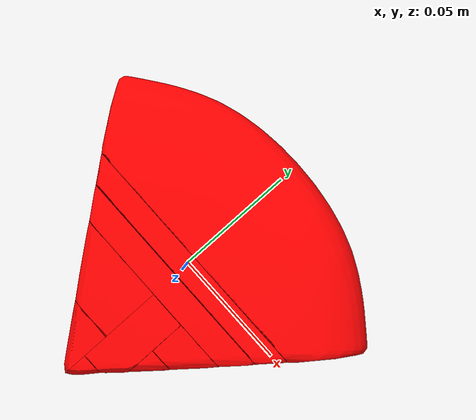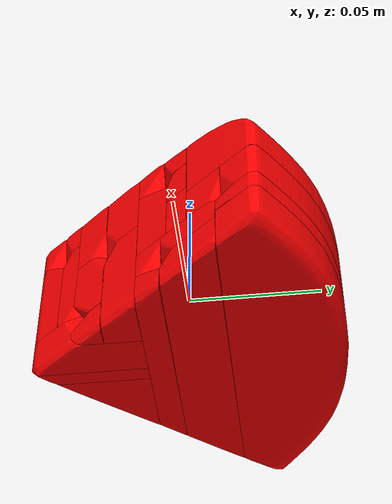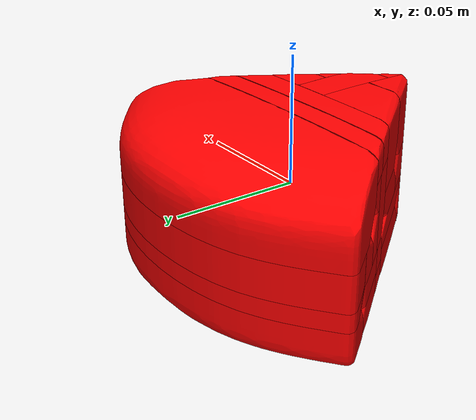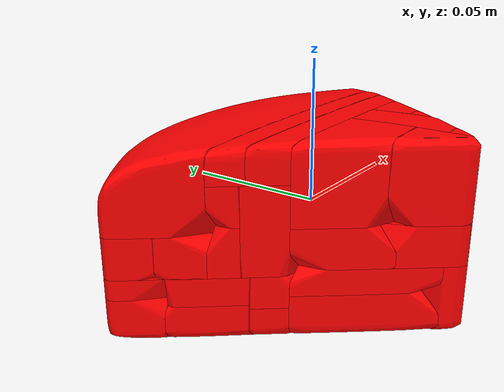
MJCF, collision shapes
<?xml version="1.0" ?>
<mujoco model="cheese_2">
	<compiler meshdir="cheese_2/meshes" texturedir="cheese_2/textures" angle="radian" autolimits="true" balanceinertia="true" boundmass="0.000001" boundinertia="0.000001"/>
	<default>
		<default class="visual">
			<geom contype="0" conaffinity="0"/>
		</default>
		<default class="collision">
			<geom rgba="1.0 0.0 0.0 0.0"/>
		</default>
	</default>
	<asset>
		<mesh name="Cheese2" file="obj/Cheese2.obj" scale="1.0 1.0 1.0"/>
		<mesh name="Cheese2_001" file="stl/Cheese2_001.stl" scale="1.0 1.0 1.0"/>
		<mesh name="Cheese2_002" file="stl/Cheese2_002.stl" scale="1.0 1.0 1.0"/>
		<mesh name="Cheese2_003" file="stl/Cheese2_003.stl" scale="1.0 1.0 1.0"/>
		<mesh name="Cheese2_004" file="stl/Cheese2_004.stl" scale="1.0 1.0 1.0"/>
		<mesh name="Cheese2_005" file="stl/Cheese2_005.stl" scale="1.0 1.0 1.0"/>
		<mesh name="Cheese2_006" file="stl/Cheese2_006.stl" scale="1.0 1.0 1.0"/>
		<mesh name="Cheese2_007" file="stl/Cheese2_007.stl" scale="1.0 1.0 1.0"/>
		<mesh name="Cheese2_008" file="stl/Cheese2_008.stl" scale="1.0 1.0 1.0"/>
		<mesh name="Cheese2_009" file="stl/Cheese2_009.stl" scale="1.0 1.0 1.0"/>
		<mesh name="Cheese2_010" file="stl/Cheese2_010.stl" scale="1.0 1.0 1.0"/>
		<mesh name="Cheese2_011" file="stl/Cheese2_011.stl" scale="1.0 1.0 1.0"/>
		<mesh name="Cheese2_012" file="stl/Cheese2_012.stl" scale="1.0 1.0 1.0"/>
		<mesh name="Cheese2_013" file="stl/Cheese2_013.stl" scale="1.0 1.0 1.0"/>
		<mesh name="Cheese2_014" file="stl/Cheese2_014.stl" scale="1.0 1.0 1.0"/>
		<mesh name="Cheese2_015" file="stl/Cheese2_015.stl" scale="1.0 1.0 1.0"/>
		<mesh name="Cheese2_016" file="stl/Cheese2_016.stl" scale="1.0 1.0 1.0"/>
		<mesh name="Cheese2_017" file="stl/Cheese2_017.stl" scale="1.0 1.0 1.0"/>
		<mesh name="Cheese2_018" file="stl/Cheese2_018.stl" scale="1.0 1.0 1.0"/>
		<mesh name="Cheese2_019" file="stl/Cheese2_019.stl" scale="1.0 1.0 1.0"/>
		<mesh name="Cheese2_020" file="stl/Cheese2_020.stl" scale="1.0 1.0 1.0"/>
		<mesh name="Cheese2_021" file="stl/Cheese2_021.stl" scale="1.0 1.0 1.0"/>
		<mesh name="Cheese2_022" file="stl/Cheese2_022.stl" scale="1.0 1.0 1.0"/>
		<mesh name="Cheese2_023" file="stl/Cheese2_023.stl" scale="1.0 1.0 1.0"/>
		<mesh name="Cheese2_024" file="stl/Cheese2_024.stl" scale="1.0 1.0 1.0"/>
		<mesh name="Cheese2_025" file="stl/Cheese2_025.stl" scale="1.0 1.0 1.0"/>
		<mesh name="Cheese2_026" file="stl/Cheese2_026.stl" scale="1.0 1.0 1.0"/>
		<mesh name="Cheese2_027" file="stl/Cheese2_027.stl" scale="1.0 1.0 1.0"/>
		<mesh name="Cheese2_028" file="stl/Cheese2_028.stl" scale="1.0 1.0 1.0"/>
		<mesh name="Cheese2_029" file="stl/Cheese2_029.stl" scale="1.0 1.0 1.0"/>
		<mesh name="Cheese2_030" file="stl/Cheese2_030.stl" scale="1.0 1.0 1.0"/>
		<mesh name="Cheese2_031" file="stl/Cheese2_031.stl" scale="1.0 1.0 1.0"/>
		<material name="M_Cheese2" texture="T_Cheese2"/>
		<texture name="T_Cheese2" type="2d" file="T_Cheese2.png"/>
	</asset>
	<worldbody>
		<body name="cheese_2" pos="0.0 0.0 0.0" quat="1.0 0.0 0.0 0.0">
			<inertial mass="0.6631571054458618" pos="-1.0164034392801113e-05 0.011534037068486214 -0.001836750889196992" quat="0.9981549382209778 -0.05943622440099716 0.0012923438334837556 0.012344392016530037" diaginertia="0.0007071096915751696 0.0007440028712153435 0.0010691877687349916"/>
			<geom name="Cheese2" type="mesh" pos="0.0 0.0 0.0" quat="1.0 0.0 0.0 0.0" mesh="Cheese2" material="M_Cheese2" class="visual"/>
			<geom name="Cheese2_001" type="mesh" pos="0.0 0.0 0.0" quat="1.0 0.0 0.0 0.0" mesh="Cheese2_001" class="collision"/>
			<geom name="Cheese2_002" type="mesh" pos="0.0 0.0 0.0" quat="1.0 0.0 0.0 0.0" mesh="Cheese2_002" class="collision"/>
			<geom name="Cheese2_003" type="mesh" pos="0.0 0.0 0.0" quat="1.0 0.0 0.0 0.0" mesh="Cheese2_003" class="collision"/>
			<geom name="Cheese2_004" type="mesh" pos="0.0 0.0 0.0" quat="1.0 0.0 0.0 0.0" mesh="Cheese2_004" class="collision"/>
			<geom name="Cheese2_005" type="mesh" pos="0.0 0.0 0.0" quat="1.0 0.0 0.0 0.0" mesh="Cheese2_005" class="collision"/>
			<geom name="Cheese2_006" type="mesh" pos="0.0 0.0 0.0" quat="1.0 0.0 0.0 0.0" mesh="Cheese2_006" class="collision"/>
			<geom name="Cheese2_007" type="mesh" pos="0.0 0.0 0.0" quat="1.0 0.0 0.0 0.0" mesh="Cheese2_007" class="collision"/>
			<geom name="Cheese2_008" type="mesh" pos="0.0 0.0 0.0" quat="1.0 0.0 0.0 0.0" mesh="Cheese2_008" class="collision"/>
			<geom name="Cheese2_009" type="mesh" pos="0.0 0.0 0.0" quat="1.0 0.0 0.0 0.0" mesh="Cheese2_009" class="collision"/>
			<geom name="Cheese2_010" type="mesh" pos="0.0 0.0 0.0" quat="1.0 0.0 0.0 0.0" mesh="Cheese2_010" class="collision"/>
			<geom name="Cheese2_011" type="mesh" pos="0.0 0.0 0.0" quat="1.0 0.0 0.0 0.0" mesh="Cheese2_011" class="collision"/>
			<geom name="Cheese2_012" type="mesh" pos="0.0 0.0 0.0" quat="1.0 0.0 0.0 0.0" mesh="Cheese2_012" class="collision"/>
			<geom name="Cheese2_013" type="mesh" pos="0.0 0.0 0.0" quat="1.0 0.0 0.0 0.0" mesh="Cheese2_013" class="collision"/>
			<geom name="Cheese2_014" type="mesh" pos="0.0 0.0 0.0" quat="1.0 0.0 0.0 0.0" mesh="Cheese2_014" class="collision"/>
			<geom name="Cheese2_015" type="mesh" pos="0.0 0.0 0.0" quat="1.0 0.0 0.0 0.0" mesh="Cheese2_015" class="collision"/>
			<geom name="Cheese2_016" type="mesh" pos="0.0 0.0 0.0" quat="1.0 0.0 0.0 0.0" mesh="Cheese2_016" class="collision"/>
			<geom name="Cheese2_017" type="mesh" pos="0.0 0.0 0.0" quat="1.0 0.0 0.0 0.0" mesh="Cheese2_017" class="collision"/>
			<geom name="Cheese2_018" type="mesh" pos="0.0 0.0 0.0" quat="1.0 0.0 0.0 0.0" mesh="Cheese2_018" class="collision"/>
			<geom name="Cheese2_019" type="mesh" pos="0.0 0.0 0.0" quat="1.0 0.0 0.0 0.0" mesh="Cheese2_019" class="collision"/>
			<geom name="Cheese2_020" type="mesh" pos="0.0 0.0 0.0" quat="1.0 0.0 0.0 0.0" mesh="Cheese2_020" class="collision"/>
			<geom name="Cheese2_021" type="mesh" pos="0.0 0.0 0.0" quat="1.0 0.0 0.0 0.0" mesh="Cheese2_021" class="collision"/>
			<geom name="Cheese2_022" type="mesh" pos="0.0 0.0 0.0" quat="1.0 0.0 0.0 0.0" mesh="Cheese2_022" class="collision"/>
			<geom name="Cheese2_023" type="mesh" pos="0.0 0.0 0.0" quat="1.0 0.0 0.0 0.0" mesh="Cheese2_023" class="collision"/>
			<geom name="Cheese2_024" type="mesh" pos="0.0 0.0 0.0" quat="1.0 0.0 0.0 0.0" mesh="Cheese2_024" class="collision"/>
			<geom name="Cheese2_025" type="mesh" pos="0.0 0.0 0.0" quat="1.0 0.0 0.0 0.0" mesh="Cheese2_025" class="collision"/>
			<geom name="Cheese2_026" type="mesh" pos="0.0 0.0 0.0" quat="1.0 0.0 0.0 0.0" mesh="Cheese2_026" class="collision"/>
			<geom name="Cheese2_027" type="mesh" pos="0.0 0.0 0.0" quat="1.0 0.0 0.0 0.0" mesh="Cheese2_027" class="collision"/>
			<geom name="Cheese2_028" type="mesh" pos="0.0 0.0 0.0" quat="1.0 0.0 0.0 0.0" mesh="Cheese2_028" class="collision"/>
			<geom name="Cheese2_029" type="mesh" pos="0.0 0.0 0.0" quat="1.0 0.0 0.0 0.0" mesh="Cheese2_029" class="collision"/>
			<geom name="Cheese2_030" type="mesh" pos="0.0 0.0 0.0" quat="1.0 0.0 0.0 0.0" mesh="Cheese2_030" class="collision"/>
			<geom name="Cheese2_031" type="mesh" pos="0.0 0.0 0.0" quat="1.0 0.0 0.0 0.0" mesh="Cheese2_031" class="collision"/>
		</body>
	</worldbody>
	<equality/>
</mujoco>
